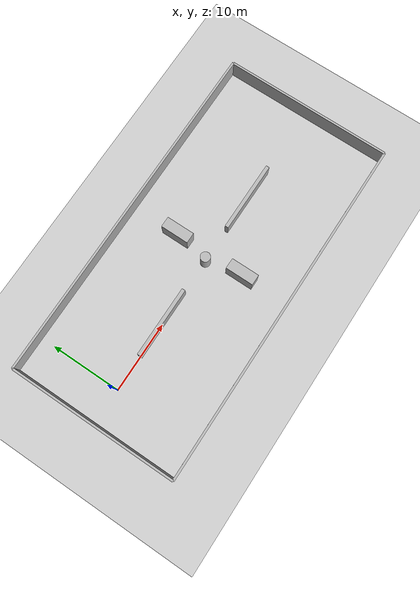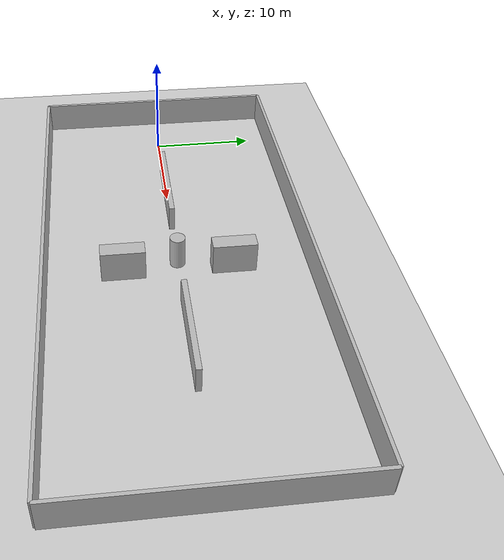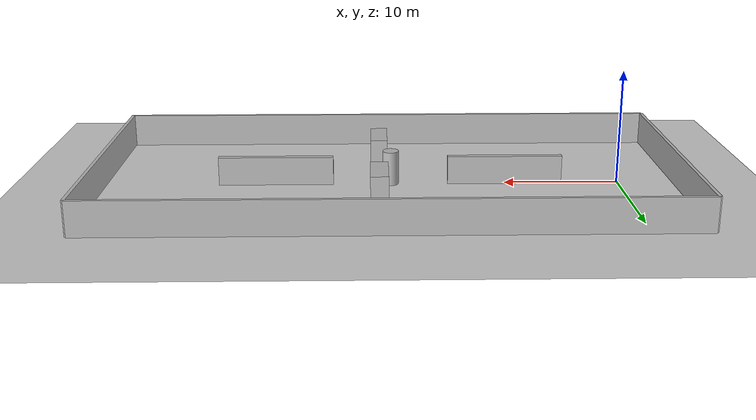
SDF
<?xml version="1.0" ?>
<sdf version="1.6">
  <world name="swarm_two_lane">
    <include><uri>model://sun</uri></include>
    <include><uri>model://ground_plane</uri></include>
    <physics name="default_physics" default="0" type="ode">
      <gravity>0 0 -9.8066</gravity>
      <ode><solver><type>quick</type><iters>20</iters></solver></ode>
      <max_step_size>0.004</max_step_size>
      <real_time_factor>1</real_time_factor>
      <real_time_update_rate>250</real_time_update_rate>
    </physics>
    <scene><ambient>0.4 0.4 0.4 1</ambient><shadows>false</shadows></scene>

    <!-- 50 m x 24 m deterministic arena. UAV start lanes are y=-3 and y=3. -->
    <model name="north_wall"><static>true</static><pose>20 12 1.5 0 0 0</pose><link name="link"><collision name="c"><geometry><box><size>50 0.3 3</size></box></geometry></collision><visual name="v"><geometry><box><size>50 0.3 3</size></box></geometry></visual></link></model>
    <model name="south_wall"><static>true</static><pose>20 -12 1.5 0 0 0</pose><link name="link"><collision name="c"><geometry><box><size>50 0.3 3</size></box></geometry></collision><visual name="v"><geometry><box><size>50 0.3 3</size></box></geometry></visual></link></model>
    <model name="west_wall"><static>true</static><pose>-5 0 1.5 0 0 0</pose><link name="link"><collision name="c"><geometry><box><size>0.3 24 3</size></box></geometry></collision><visual name="v"><geometry><box><size>0.3 24 3</size></box></geometry></visual></link></model>
    <model name="east_wall"><static>true</static><pose>45 0 1.5 0 0 0</pose><link name="link"><collision name="c"><geometry><box><size>0.3 24 3</size></box></geometry></collision><visual name="v"><geometry><box><size>0.3 24 3</size></box></geometry></visual></link></model>

    <model name="lane_divider_a"><static>true</static><pose>10 0 1.25 0 0 0</pose><link name="link"><collision name="c"><geometry><box><size>10 0.5 2.5</size></box></geometry></collision><visual name="v"><geometry><box><size>10 0.5 2.5</size></box></geometry></visual></link></model>
    <model name="lane_divider_b"><static>true</static><pose>30 0 1.25 0 0 0</pose><link name="link"><collision name="c"><geometry><box><size>10 0.5 2.5</size></box></geometry></collision><visual name="v"><geometry><box><size>10 0.5 2.5</size></box></geometry></visual></link></model>
    <model name="north_obstacle"><static>true</static><pose>21 5 1.5 0 0 0</pose><link name="link"><collision name="c"><geometry><box><size>1.5 4 3</size></box></geometry></collision><visual name="v"><geometry><box><size>1.5 4 3</size></box></geometry></visual></link></model>
    <model name="south_obstacle"><static>true</static><pose>21 -5 1.5 0 0 0</pose><link name="link"><collision name="c"><geometry><box><size>1.5 4 3</size></box></geometry></collision><visual name="v"><geometry><box><size>1.5 4 3</size></box></geometry></visual></link></model>
    <model name="shared_landmark"><static>true</static><pose>20 0 1.5 0 0 0</pose><link name="link"><collision name="c"><geometry><cylinder><radius>0.7</radius><length>3</length></cylinder></geometry></collision><visual name="v"><geometry><cylinder><radius>0.7</radius><length>3</length></cylinder></geometry></visual></link></model>
  </world>
</sdf>
